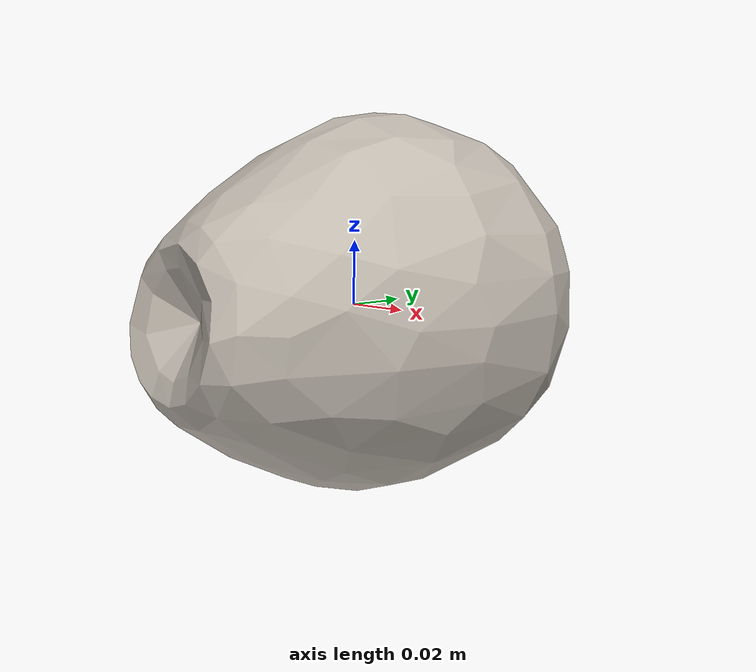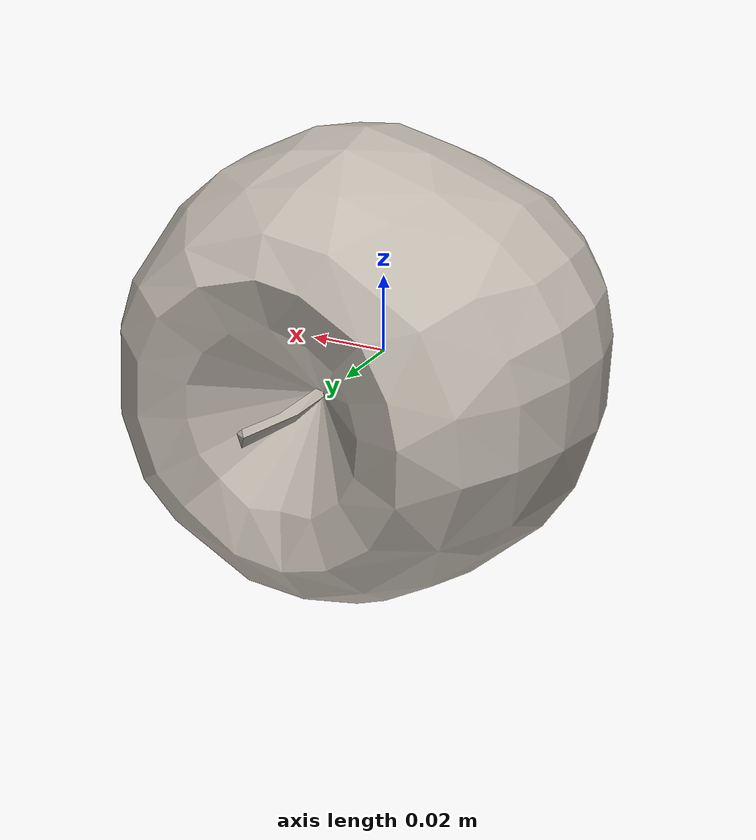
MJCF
<mujoco model="Apple_25">
  <compiler autolimits="true" boundmass="0.01" angle="radian"/>
  <default>
    <default class="/">
      <default class="__VISUAL_MJT__">
        <geom contype="0" conaffinity="0" group="0"/>
      </default>
      <default class="__STRUCTURAL_MJT__">
        <geom contype="8" conaffinity="15" group="4" friction="0.90000000000000002 0.90000000000000002 0.001" solref="0.025000000000000001 1" solimp="0.998 0.998 0.001"/>
      </default>
      <default class="__DYNAMIC_MJT__">
        <geom contype="1" conaffinity="15" group="4" friction="0.90000000000000002 0.90000000000000002 0.001" solref="0.025000000000000001 1" solimp="0.998 0.998 0.001"/>
      </default>
    </default>
  </default>
  <asset>
    <texture name="Apple2_Mat1" type="2d" file="Apple2_AlbedoTransparency1.png"/>
    <material name="material_Apple2_Mat1" class="/" texture="Apple2_Mat1" specular="0.5" shininess="0.5" rgba="1 1 1 1"/>
    <mesh name="Apple_25_apple_b10" class="/" file="Apple_25_apple_b10/Apple_25_apple_b10.obj" scale="1 1 1"/>
  </asset>
  <worldbody>
    <body name="Apple_25">
      <joint name="Apple_25_free" class="/" type="free" pos="0 0 0" axis="0 0 1" stiffness="0" range="0 0" armature="0" damping="0.10000000000000001" frictionloss="0"/>
      <body name="Apple_25_apple_b10" pos="-0 0.0039399999999999999 0" quat="1 0 0 0">
        <geom name="Apple_25_apple_b10" class="__VISUAL_MJT__" type="mesh" material="material_Apple2_Mat1" shellinertia="false" mesh="Apple_25_apple_b10"/>
        <geom name="Apple_25_PrimitiveCollider_0" class="__DYNAMIC_MJT__" type="capsule" size="0.061046727001667023 0.009563155472278595" rgba="0 1 0 1" pos="-0 -0.0039416253566741943 0" quat="0.70710678118654757 0.70710678118654746 0 0"/>
      </body>
    </body>
  </worldbody>
</mujoco>
